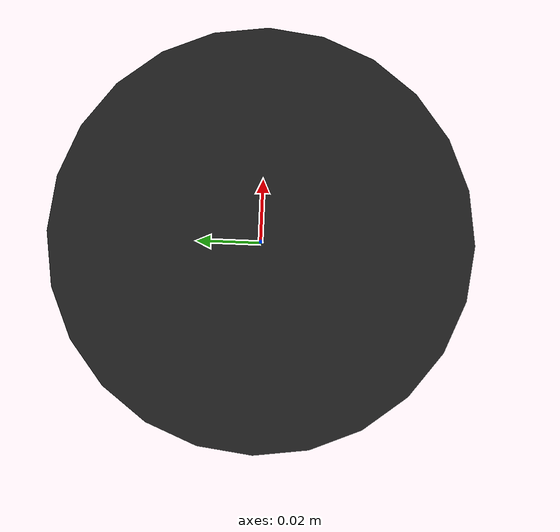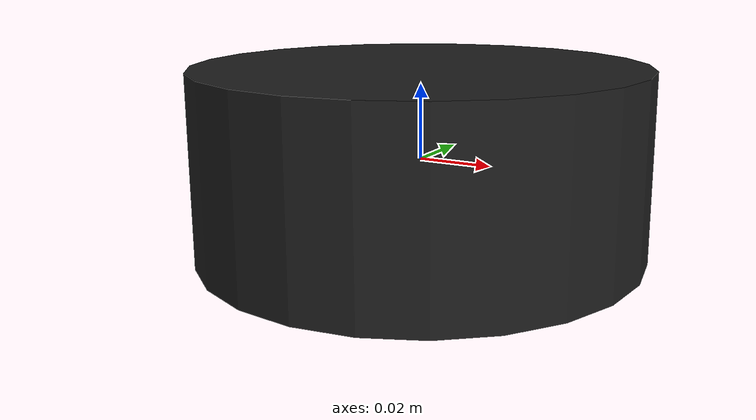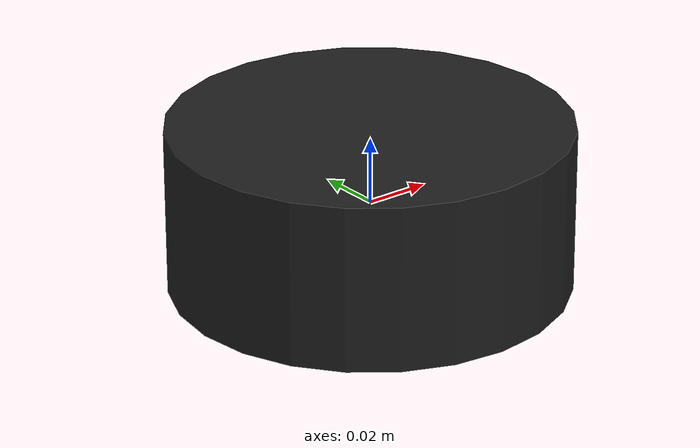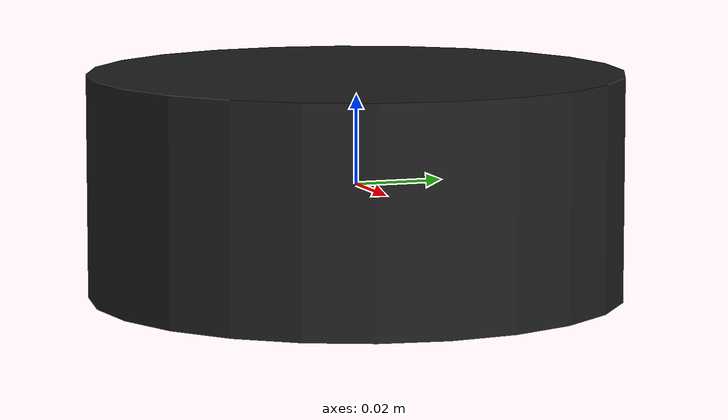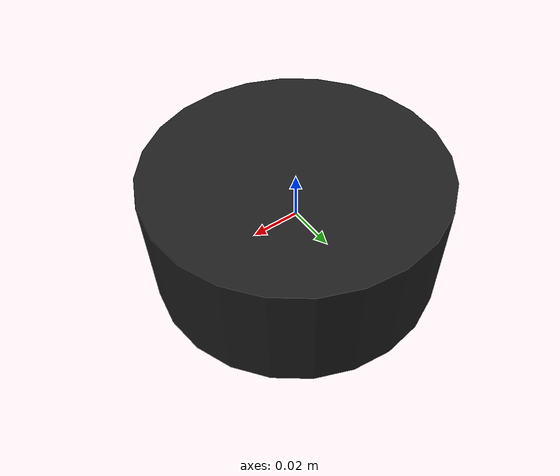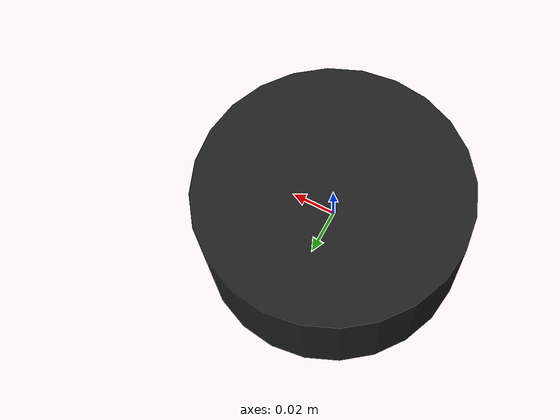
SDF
<?xml version="1.0" ?>
<sdf version="1.4">
  <model name="lidar">
    <link name="lidar_link">
      <pose>0 0 0 0 0 0</pose>
      <inertial>
        <pose>0 0 0 0 0 0</pose>
        <mass>0.01</mass>
        <inertia>
          <ixx>2.1733e-6</ixx>
          <ixy>0</ixy>
          <ixz>0</ixz>
          <iyy>2.1733e-6</iyy>
          <iyz>0</iyz>
          <izz>1.8e-7</izz>
        </inertia>
      </inertial>
      <collision name='collision'>
        <geometry>
          <cylinder><radius>0.06</radius><length>0.05</length></cylinder>
        </geometry>
        <max_contacts>10</max_contacts>
      </collision>
      <visual name="visual">
        <geometry>
          <cylinder><radius>0.06</radius><length>0.05</length></cylinder>
        </geometry>
        <material>
          <script>
            <name>Gazebo/Black</name>
          </script>
        </material>
      </visual>
      <sensor name="laser" type="ray">
        <pose>0 0 0 0 1.57079633 0</pose>
        <ray>
          <scan>
            <horizontal>
              <samples>1</samples>
              <resolution>1</resolution>
              <min_angle>-0</min_angle>
              <max_angle>0</max_angle>
            </horizontal>
          </scan>
          <range>
            <min>0.06</min> <!-- do not change: use min_distance (below) for realistic behavior (smaller values cause issues) -->
            <max>35</max>   <!-- do not change: use min_distance (below) for realistic behavior (bigger values cause issues) -->
            <resolution>0.01</resolution>
          </range>
          <noise>
            <type>gaussian</type>
            <mean>0.0</mean>
            <stddev>0.02</stddev>
          </noise>
        </ray>
        <plugin name="LaserPlugin" filename="libgazebo_lidar_plugin.so">
          <topic>laser/scan</topic>
          <robotNamespace>rover</robotNamespace>
          <min_distance>0.2</min_distance>
          <max_distance>15.0</max_distance>
        </plugin>
        <always_on>1</always_on>
        <update_rate>20</update_rate>
        <visualize>true</visualize>
      </sensor>
    </link>
  </model>
</sdf>
